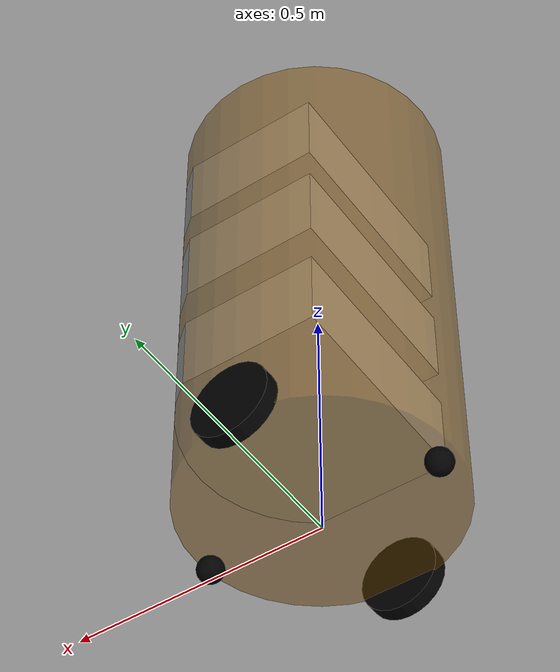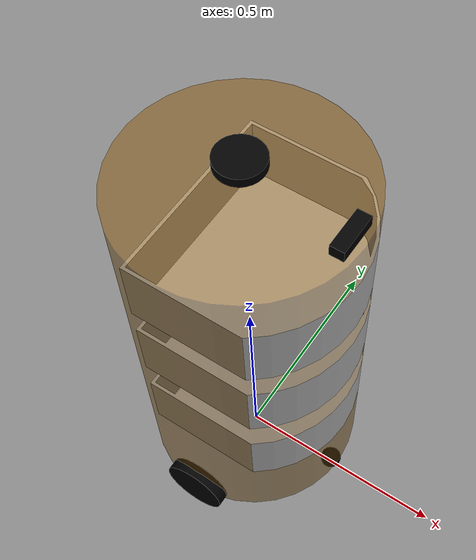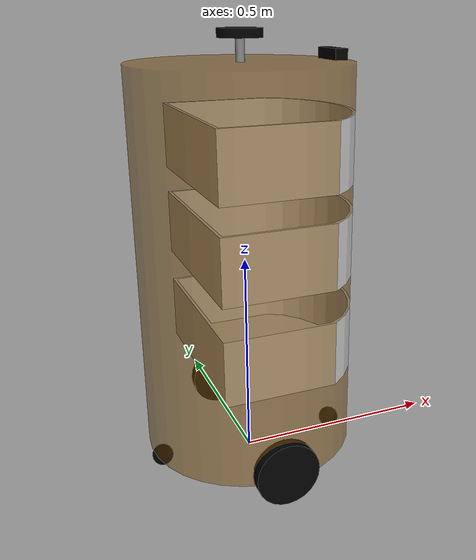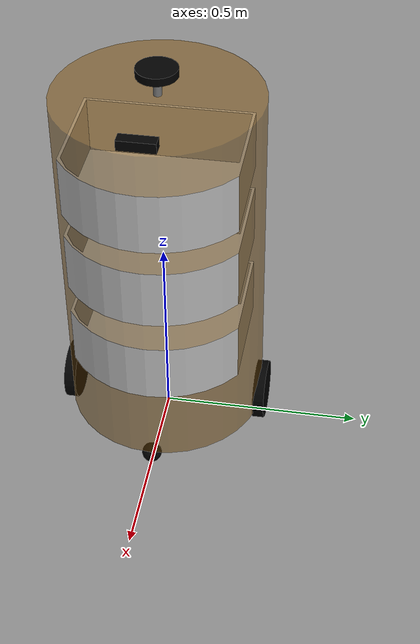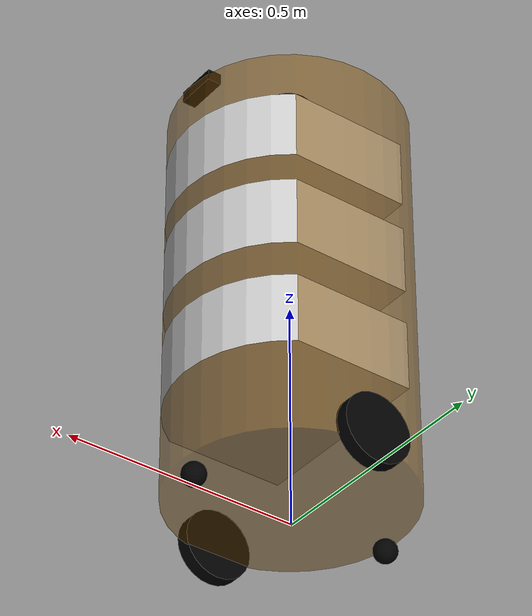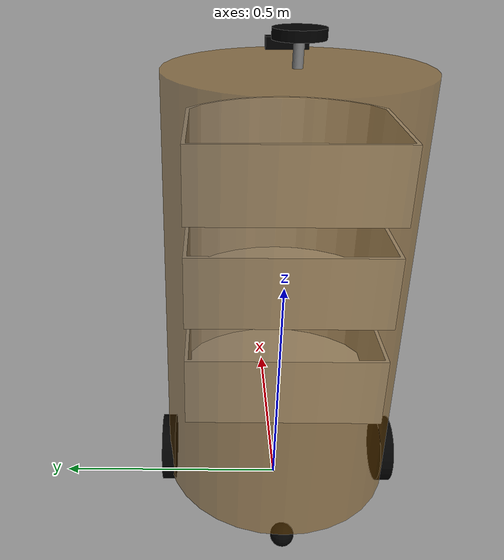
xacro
<!-- 组合小车底盘与摄像头 -->
<robot name="my_car_camera" xmlns:xacro="http://wiki.ros.org/xacro">
    <xacro:include filename="head.xacro" />
    <xacro:include filename="car.xacro" />
    <xacro:include filename="move.xacro" />
    <xacro:include filename="laser.xacro" />
    <xacro:include filename="laser_sensors.xacro" />
    <xacro:include filename="drawer_system.xacro" />
    <xacro:include filename="depth_camera.xacro" />
    <xacro:include filename="depth_camera_sensors.xacro" />
</robot>

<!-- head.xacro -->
<robot name="base" xmlns:xacro="http://wiki.ros.org/xacro">

    <xacro:macro name="sphere_inertial_matrix" params="m r">
        <inertial>
            <mass value="${m}" />
            <inertia ixx="${2*m*r*r/5}" ixy="0" ixz="0"
                iyy="${2*m*r*r/5}" iyz="0"
                izz="${2*m*r*r/5}" />
        </inertial>
    </xacro:macro>

    <xacro:macro name="cylinder_inertial_matrix" params="m r h">
        <inertial>
            <mass value="${m}" />
            <inertia ixx="${m*(3*r*r+h*h)/12}" ixy = "0" ixz = "0"
                iyy="${m*(3*r*r+h*h)/12}" iyz = "0"
                izz="${m*r*r/2}" />
        </inertial>
    </xacro:macro>

    <xacro:macro name="Box_inertial_matrix" params="m l w h">
       <inertial>
               <mass value="${m}" />
               <inertia ixx="${m*(h*h + l*l)/12}" ixy = "0" ixz = "0"
                   iyy="${m*(w*w + l*l)/12}" iyz= "0"
                   izz="${m*(w*w + h*h)/12}" />
       </inertial>
   </xacro:macro>
</robot>

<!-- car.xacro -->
<!--
    使用 xacro 优化 URDF 版的小车底盘实现：
-->
<robot name="my_base" xmlns:xacro="http://www.ros.org/wiki/xacro">
    <!-- 封装变量、常量 -->
    <xacro:property name="PI" value="3.1415926"/>

    <!-- 底盘属性 -->
    <xacro:property name="base_footprint_radius" value="0.001" />
    <xacro:property name="base_link_radius" value="0.25" />
    <xacro:property name="base_link_length" value="0.9" />
    <xacro:property name="earth_space" value="0.05" />
    <xacro:property name="base_link_m" value="5.0" />

    <!-- 底盘 -->
    <link name="base_footprint">
      <visual>
        <geometry>
          <sphere radius="${base_footprint_radius}" />
        </geometry>
      </visual>
    </link>

    <link name="base_link">
      <visual>
        <geometry>
          <!-- 使用DAE模型作为视觉 -->
          <mesh filename="package://zj_base/meshes/modle.dae" />
        </geometry>
        <origin xyz="0 0 0" rpy="0 0 0" />
        <material name="yellow">
          <color rgba="0.5 0.3 0.0 0.5" />
        </material>
      </visual>
      <collision>
        <geometry>
          <!-- 使用相同的DAE模型作为碰撞体 -->
          <mesh filename="package://zj_base/meshes/modle.dae" />
        </geometry>
        <origin xyz="0 0 0" rpy="0 0 0" />
      </collision>
      <xacro:cylinder_inertial_matrix m="${base_link_m}" r="${base_link_radius}" h="${base_link_length}" />
    </link>

    <joint name="base_link2base_footprint" type="fixed">
      <parent link="base_footprint" />
      <child link="base_link" />
      <origin xyz="0 0 ${earth_space + base_link_length / 2 }" />
    </joint>

    <!-- 驱动轮属性 -->
    <xacro:property name="wheel_radius" value="0.075" />
    <xacro:property name="wheel_length" value="0.03" />
    <xacro:property name="wheel_m" value="0.2" />

    <!-- 驱动轮宏实现 -->
    <xacro:macro name="add_wheels" params="name flag">
      <link name="${name}_wheel">
        <visual>
          <geometry>
            <cylinder radius="${wheel_radius}" length="${wheel_length}" />
          </geometry>
          <origin xyz="0.0 0.0 0.0" rpy="${PI / 2} 0.0 0.0" />
          <material name="black">
            <color rgba="0.0 0.0 0.0 1.0" />
          </material>
        </visual>
        <collision>
          <geometry>
            <cylinder radius="${wheel_radius}" length="${wheel_length}" />
          </geometry>
          <origin xyz="0.0 0.0 0.0" rpy="${PI / 2} 0.0 0.0" />
        </collision>
        <xacro:cylinder_inertial_matrix m="${wheel_m}" r="${wheel_radius}" h="${wheel_length}" />
      </link>

      <joint name="${name}_wheel2base_link" type="continuous">
        <parent link="base_link" />
        <child link="${name}_wheel" />
        <origin xyz="0 ${flag * base_link_radius} ${-(earth_space + base_link_length / 2 - wheel_radius) }" />
        <axis xyz="0 1 0" />
      </joint>

      <gazebo reference="${name}_wheel">
        <material>Gazebo/Black</material>
      </gazebo>
    </xacro:macro>

    <xacro:add_wheels name="left" flag="1" />
    <xacro:add_wheels name="right" flag="-1" />

    <!-- 支撑轮属性 -->
    <xacro:property name="support_wheel_radius" value="0.025" />
    <xacro:property name="support_wheel_m" value="0.1" />

    <!-- 支撑轮宏 -->
    <xacro:macro name="add_support_wheel" params="name flag" >
      <link name="${name}_wheel">
        <visual>
            <geometry>
                <sphere radius="${support_wheel_radius}" />
            </geometry>
            <origin xyz="0 0 0" rpy="0 0 0" />
            <material name="black">
            <color rgba="0.0 0.0 0.0 1.0" />
          </material>
        </visual>
        <collision>
            <geometry>
                <sphere radius="${support_wheel_radius}" />
            </geometry>
            <origin xyz="0 0 0" rpy="0 0 0" />
        </collision>
        <xacro:sphere_inertial_matrix m="${support_wheel_m}" r="${support_wheel_radius}" />
      </link>

      <joint name="${name}_wheel2base_link" type="continuous">
          <parent link="base_link" />
          <child link="${name}_wheel" />
          <origin xyz="${flag * (base_link_radius - support_wheel_radius)} 0 ${-(base_link_length / 2 + earth_space / 2)}" />
          <axis xyz="1 0 0" />
      </joint>

      <gazebo reference="${name}_wheel">
        <material>Gazebo/Black</material>
        <mu1>0.0</mu1>
        <mu2>0.0</mu2>
        <kp>1000000.0</kp>
        <kd>100.0</kd>
      </gazebo>
    </xacro:macro>

    <xacro:add_support_wheel name="front" flag="1" />
    <xacro:add_support_wheel name="back" flag="-1" />

    <!-- 惯性矩阵宏定义 -->
    <xacro:macro name="cylinder_inertial_matrix" params="m r h">
      <inertial>
        <mass value="${m}" />
        <inertia ixx="${m*(3*r*r+h*h)/12}" ixy="0" ixz="0"
                 iyy="${m*(3*r*r+h*h)/12}" iyz="0"
                 izz="${m*r*r/2}" />
      </inertial>
    </xacro:macro>

    <xacro:macro name="sphere_inertial_matrix" params="m r">
      <inertial>
        <mass value="${m}" />
        <inertia ixx="${2*m*r*r/5}" ixy="0" ixz="0"
                 iyy="${2*m*r*r/5}" iyz="0"
                 izz="${2*m*r*r/5}" />
      </inertial>
    </xacro:macro>

</robot>

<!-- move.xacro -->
<robot name="my_car_complete" xmlns:xacro="http://wiki.ros.org/xacro">

  <!-- 属性定义 -->
  <xacro:property name="base_link_radius" value="0.25" />
  <xacro:property name="wheel_radius" value="0.075" />

  <!-- ==================== 传动装置宏定义 ==================== -->

  <!-- 轮子传动装置宏 - Velocity接口 -->
  <xacro:macro name="wheel_transmission" params="joint_name">
    <transmission name="${joint_name}_trans">
      <type>transmission_interface/SimpleTransmission</type>
      <joint name="${joint_name}">
        <hardwareInterface>hardware_interface/VelocityJointInterface</hardwareInterface>
      </joint>
      <actuator name="${joint_name}_motor">
        <hardwareInterface>hardware_interface/VelocityJointInterface</hardwareInterface>
        <mechanicalReduction>1</mechanicalReduction>
      </actuator>
    </transmission>
  </xacro:macro>

  <!-- 抽屉传动装置宏 - Effort接口 -->
  <xacro:macro name="drawer_transmission" params="joint_name">
    <transmission name="${joint_name}_trans">
      <type>transmission_interface/SimpleTransmission</type>
      <joint name="${joint_name}">
        <hardwareInterface>hardware_interface/EffortJointInterface</hardwareInterface>
      </joint>
      <actuator name="${joint_name}_motor">
        <hardwareInterface>hardware_interface/EffortJointInterface</hardwareInterface>
        <mechanicalReduction>1</mechanicalReduction>
      </actuator>
    </transmission>
  </xacro:macro>

  <!-- ==================== 应用传动装置 ==================== -->

  <!-- 轮子传动装置 -->
  <xacro:wheel_transmission joint_name="left_wheel2base_link" />
  <xacro:wheel_transmission joint_name="right_wheel2base_link" />

  <!-- 抽屉传动装置 -->
  <xacro:drawer_transmission joint_name="drawer2base_link"/>
  <xacro:drawer_transmission joint_name="drawer22base_link"/>
  <xacro:drawer_transmission joint_name="drawer32base_link"/>

  <!-- ==================== Gazebo 插件配置 ==================== -->

  <!-- 统一的 Gazebo ROS Control 插件 -->
  <gazebo>
    <plugin name="gazebo_ros_control" filename="libgazebo_ros_control.so">
      <robotNamespace>/</robotNamespace>
      <robotSimType>gazebo_ros_control/DefaultRobotHWSim</robotSimType>
      <controlPeriod>0.001</controlPeriod>
      <!-- 可选：配置所有关节的默认PID -->
      <jointInterfaceDefaults>
        <effort>
          <p>100.0</p>
          <i>1.0</i>
          <d>5.0</d>
        </effort>
        <velocity>
          <p>1000.0</p>
          <i>0.1</i>
          <d>0.0</d>
        </velocity>
      </jointInterfaceDefaults>
    </plugin>
  </gazebo>

</robot>

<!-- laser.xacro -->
<robot name="laser" xmlns:xacro="http://ros.org/wiki/xacro">

    <!-- 雷达支架 -->
    <xacro:property name="support_length" value="0.05" /> <!-- 支架长度 -->
    <xacro:property name="support_radius" value="0.01" /> <!-- 支架半径 -->
    <xacro:property name="support_x" value="0.0" /> <!-- 支架安装的x坐标 -->
    <xacro:property name="support_y" value="0.0" /> <!-- 支架安装的y坐标 -->
    <xacro:property name="support_z" value="${earth_space + base_link_length + support_length / 2}" /> <!-- 支架安装的z坐标:底盘高度 / 2 + 支架高度 / 2  -->

    <link name="suport">
        <visual>
            <geometry>
                <cylinder radius="${support_radius}" length="${support_length}"/>
            </geometry>
            <origin rpy="0 0 0" xyz="0.0 0.0 0.0"/>
            <material name="grey">
                <color rgba="0.5 0.5 0.5 1.0"/>
            </material>
        </visual>
        <collision>
            <geometry>
                <cylinder radius="${support_radius}" length="${support_length}"/>
            </geometry>
            <origin rpy="0 0 0" xyz="0.0 0.0 0.0"/>
        </collision>
        <inertial>
            <origin xyz="0 0 0"/>
            <mass value="0.1"/>
            <inertia ixx="0.0001" ixy="0" ixz="0" iyy="0.0001" iyz="0" izz="0.0001"/>
        </inertial>
    </link>

    <joint name="support2base_link" type="fixed">
        <parent link="base_link"/>
        <child link="suport"/>
        <origin xyz="0 0 ${base_link_length/2 + support_length/2}" rpy="0 0 0"/>
    </joint>

    <!-- 雷达主体 -->
    <xacro:property name="PI" value="3.141"/>
    <xacro:property name="laser_radius" value="0.05"/>
    <xacro:property name="laser_height" value="0.02"/>

    <link name="laser">
        <visual>
            <geometry>
                <cylinder radius="${laser_radius}" length="${laser_height}"/>
            </geometry>
            <origin rpy="0 0 0" xyz="0 0 0"/>
            <material name="black">
                <color rgba="0.0 0.0 0.0 1.0"/>
            </material>
        </visual>
        <collision>
            <geometry>
                <cylinder radius="${laser_radius}" length="${laser_height}"/>
            </geometry>
            <origin rpy="0 0 0" xyz="0 0 0"/>
        </collision>
        <inertial>
            <origin xyz="0 0 0"/>
            <mass value="0.2"/>
            <inertia ixx="0.0001" ixy="0" ixz="0" iyy="0.0001" iyz="0" izz="0.0001"/>
        </inertial>

    </link>

    <joint name="laser2support" type="fixed">
        <parent link="suport"/>
        <child link="laser"/>
        <origin xyz="0 0 ${support_length/2 + laser_height/2}" rpy="0 0 0"/>
    </joint>

</robot>

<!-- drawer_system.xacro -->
<robot name="drawer_system" xmlns:xacro="http://wiki.ros.org/xacro">

  <!-- 抽屉组件1 - 使用DAE格式的mesh碰撞体 -->
  <link name="drawer">
    <visual>
      <geometry>
        <!-- 替换为DAE文件 -->
        <mesh filename="package://zj_base/meshes/mdae.dae"/>
      </geometry>
      <origin rpy="0 0 0" xyz="0 0 0"/>
      <material name="drawer_material">
        <color rgba="0.8 0.8 0.8 1.0"/>
      </material>
    </visual>
    <collision>
      <geometry>
        <!-- 替换为DAE文件 -->
        <mesh filename="package://zj_base/meshes/mdae.dae"/>
      </geometry>
      <origin rpy="0 0 0" xyz="0 0 0"/>
      <surface>
        <contact>
          <ode>
            <soft_cfm>0.0</soft_cfm>
            <soft_erp>0.2</soft_erp>
            <kp>1e12</kp>        <!-- 大幅增加接触刚度防止穿透 -->
            <kd>1000</kd>         <!-- 增加接触阻尼 -->
            <max_vel>10.0</max_vel>      <!-- 增加最大接触速度 -->
            <min_depth>0.0001</min_depth>  <!-- 减小最小穿透深度 -->
          </ode>
        </contact>
        <friction>
          <ode>
            <mu>1.0</mu>          <!-- 增加摩擦系数 -->
            <mu2>0.8</mu2>
            <slip1>0.0</slip1>
            <slip2>0.0</slip2>
            <fdir1>1 0 0</fdir1>
          </ode>
        </friction>
        <bounce>
          <restitution_coefficient>0.0</restitution_coefficient>
          <threshold>1.0</threshold>
        </bounce>
      </surface>
    </collision>
    <inertial>
      <origin xyz="0 0 0"/>
      <mass value="2.0"/>         <!-- 适当增加质量提高稳定性 -->
      <inertia ixx="0.001" ixy="0" ixz="0" iyy="0.001" iyz="0" izz="0.001"/>
    </inertial>
  </link>

  <joint name="drawer2base_link" type="prismatic">
    <parent link="base_link"/>
    <child link="drawer"/>
    <origin rpy="0 0 0" xyz="0 0 0"/>
    <axis xyz="1 0 0"/>
    <limit effort="1000" lower="0" upper="0.2" velocity="2.0"/>  <!-- 增加effort -->
    <dynamics damping="0.1" friction="0.0"/>  <!-- 适当增加阻尼 -->
  </joint>

  <gazebo reference="drawer">
    <material>Gazebo/Grey</material>
    <selfCollide>true</selfCollide>
    <mu1>1.0</mu1>               <!-- 增加摩擦 -->
    <mu2>0.8</mu2>
    <kp>1e12</kp>               <!-- 大幅增加接触刚度 -->
    <kd>1000.0</kd>             <!-- 增加接触阻尼 -->
    <minDepth>0.0001</minDepth>  <!-- 减小最小穿透深度 -->
    <maxVel>10.0</maxVel>        <!-- 增加最大接触速度 -->
    <laserRetro>0</laserRetro>
  </gazebo>

  <gazebo reference="drawer2base_link">
    <stopCfm>0.0</stopCfm>
    <stopErp>0.9</stopErp>       <!-- 增加ERP提高约束精度 -->
    <provideFeedback>true</provideFeedback>
    <physics>
      <ode>
        <limit>
          <cfm>0.0</cfm>
          <erp>0.9</erp>         <!-- 增加ERP -->
        </limit>
        <fdir1>1 0 0</fdir1>
        <friction>1.0 0.8 0.0</friction>  <!-- 增加摩擦 -->
        <suspension>
          <cfm>0.0</cfm>
          <erp>0.9</erp>
        </suspension>
      </ode>
    </physics>
  </gazebo>

  <!-- 抽屉组件2 - 保持STL格式 -->
  <link name="drawer2">
    <visual>
      <geometry>
        <mesh filename="package://zj_base/meshes/box2.dae"/>
      </geometry>
      <origin rpy="0 0 0" xyz="0 0 0"/>
      <material name="drawer_material">
        <color rgba="0.8 0.8 0.8 1.0"/>
      </material>
    </visual>
    <collision>
      <geometry>
        <mesh filename="package://zj_base/meshes/box2.dae"/>
      </geometry>
      <origin rpy="0 0 0" xyz="0 0 0"/>
      <surface>
        <contact>
          <ode>
            <soft_cfm>0.0</soft_cfm>
            <soft_erp>0.2</soft_erp>
            <kp>1e12</kp>
            <kd>1000</kd>
            <max_vel>10.0</max_vel>
            <min_depth>0.0001</min_depth>
          </ode>
        </contact>
        <friction>
          <ode>
            <mu>1.0</mu>
            <mu2>0.8</mu2>
            <slip1>0.0</slip1>
            <slip2>0.0</slip2>
            <fdir1>1 0 0</fdir1>
          </ode>
        </friction>
        <bounce>
          <restitution_coefficient>0.0</restitution_coefficient>
          <threshold>1.0</threshold>
        </bounce>
      </surface>
    </collision>
    <inertial>
      <origin xyz="0 0 0"/>
      <mass value="2.0"/>
      <inertia ixx="0.001" ixy="0" ixz="0" iyy="0.001" iyz="0" izz="0.001"/>
    </inertial>
  </link>

  <joint name="drawer22base_link" type="prismatic">
    <parent link="base_link"/>
    <child link="drawer2"/>
    <origin rpy="0 0 0" xyz="0 0 0"/>
    <axis xyz="1 0 0"/>
    <limit effort="1000" lower="0" upper="0.2" velocity="2.0"/>
    <dynamics damping="0.1" friction="0.0"/>
  </joint>

  <gazebo reference="drawer2">
    <material>Gazebo/Grey</material>
    <selfCollide>true</selfCollide>
    <mu1>1.0</mu1>
    <mu2>0.8</mu2>
    <kp>1e12</kp>
    <kd>1000.0</kd>
    <minDepth>0.0001</minDepth>
    <maxVel>10.0</maxVel>
    <laserRetro>0</laserRetro>
  </gazebo>

  <gazebo reference="drawer22base_link">
    <stopCfm>0.0</stopCfm>
    <stopErp>0.9</stopErp>
    <provideFeedback>true</provideFeedback>
    <physics>
      <ode>
        <limit>
          <cfm>0.0</cfm>
          <erp>0.9</erp>
        </limit>
        <fdir1>1 0 0</fdir1>
        <friction>1.0 0.8 0.0</friction>
        <suspension>
          <cfm>0.0</cfm>
          <erp>0.9</erp>
        </suspension>
      </ode>
    </physics>
  </gazebo>

  <!-- 抽屉组件3 - 保持STL格式 -->
  <link name="drawer3">
    <visual>
      <geometry>
        <mesh filename="package://zj_base/meshes/box3.dae"/>
      </geometry>
      <origin rpy="0 0 0" xyz="0 0 0"/>
      <material name="drawer_material">
        <color rgba="0.8 0.8 0.8 1.0"/>
      </material>
    </visual>
    <collision>
      <geometry>
        <mesh filename="package://zj_base/meshes/box3.dae"/>
      </geometry>
      <origin rpy="0 0 0" xyz="0 0 0"/>
      <surface>
        <contact>
          <ode>
            <soft_cfm>0.0</soft_cfm>
            <soft_erp>0.2</soft_erp>
            <kp>1e12</kp>
            <kd>1000</kd>
            <max_vel>10.0</max_vel>
            <min_depth>0.0001</min_depth>
          </ode>
        </contact>
        <friction>
          <ode>
            <mu>1.0</mu>
            <mu2>0.8</mu2>
            <slip1>0.0</slip1>
            <slip2>0.0</slip2>
            <fdir1>1 0 0</fdir1>
          </ode>
        </friction>
        <bounce>
          <restitution_coefficient>0.0</restitution_coefficient>
          <threshold>1.0</threshold>
        </bounce>
      </surface>
    </collision>
    <inertial>
      <origin xyz="0 0 0"/>
      <mass value="2.0"/>
      <inertia ixx="0.001" ixy="0" ixz="0" iyy="0.001" iyz="0" izz="0.001"/>
    </inertial>
  </link>

  <joint name="drawer32base_link" type="prismatic">
    <parent link="base_link"/>
    <child link="drawer3"/>
    <origin rpy="0 0 0" xyz="0 0 0"/>
    <axis xyz="1 0 0"/>
    <limit effort="1000" lower="0" upper="0.2" velocity="2.0"/>
    <dynamics damping="0.1" friction="0.0"/>
  </joint>

  <gazebo reference="drawer3">
    <material>Gazebo/Grey</material>
    <selfCollide>true</selfCollide>
    <mu1>1.0</mu1>
    <mu2>0.8</mu2>
    <kp>1e12</kp>
    <kd>1000.0</kd>
    <minDepth>0.0001</minDepth>
    <maxVel>10.0</maxVel>
    <laserRetro>0</laserRetro>
  </gazebo>

  <gazebo reference="drawer32base_link">
    <stopCfm>0.0</stopCfm>
    <stopErp>0.9</stopErp>
    <provideFeedback>true</provideFeedback>
    <physics>
      <ode>
        <limit>
          <cfm>0.0</cfm>
          <erp>0.9</erp>
        </limit>
        <fdir1>1 0 0</fdir1>
        <friction>1.0 0.8 0.0</friction>
        <suspension>
          <cfm>0.0</cfm>
          <erp>0.9</erp>
        </suspension>
      </ode>
    </physics>
  </gazebo>

</robot>

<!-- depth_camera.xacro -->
<robot name="depth_camera" xmlns:xacro="http://wiki.ros.org/xacro">

    <!-- 深度相机参数 -->
    <xacro:property name="depth_camera_length" value="0.09" />
    <xacro:property name="depth_camera_wide" value="0.03" />   <!-- 深度相机通常更宽一些 -->
    <xacro:property name="depth_camera_height" value="0.025" />
    <xacro:property name="camera_y" value="0.0" />

    <!-- 定义深度相机的link -->
    <link name="depth_camera">
        <visual>
            <geometry>
                <box size="${depth_camera_length} ${depth_camera_wide} ${depth_camera_height}" />
            </geometry>
            <origin rpy="0 0 ${PI/2}" xyz="0 0 0" />
            <material name="black">
                <color rgba="0.0 0.0 0.0 1.0" />
            </material>
        </visual>
        <collision>
            <geometry>
                <box size="${depth_camera_length} ${depth_camera_wide} ${depth_camera_height}" />
            </geometry>
            <origin rpy="0 0 ${PI/2}" xyz="0 0 0" />
        </collision>
        <inertial>
            <origin xyz="0 0 0" />
            <mass value="0.15" />  <!-- 深度相机稍重一些 -->
            <inertia ixx="0.0001" ixy="0" ixz="0" iyy="0.0001" iyz="0" izz="0.0001" />
        </inertial>
    </link>

    <!-- 将深度相机连接到base_link -->
    <joint name="depth_camera2base_link" type="fixed">
        <parent link="base_link" />
        <child link="depth_camera" />
        <origin xyz="${base_link_radius-depth_camera_wide} ${camera_y} ${base_link_length/2 + depth_camera_height/2}" rpy="0 0 0" />
    </joint>

    <!-- Gazebo可视化材质 -->
    <gazebo reference="depth_camera">
        <material>Gazebo/Black</material>
    </gazebo>
</robot>
